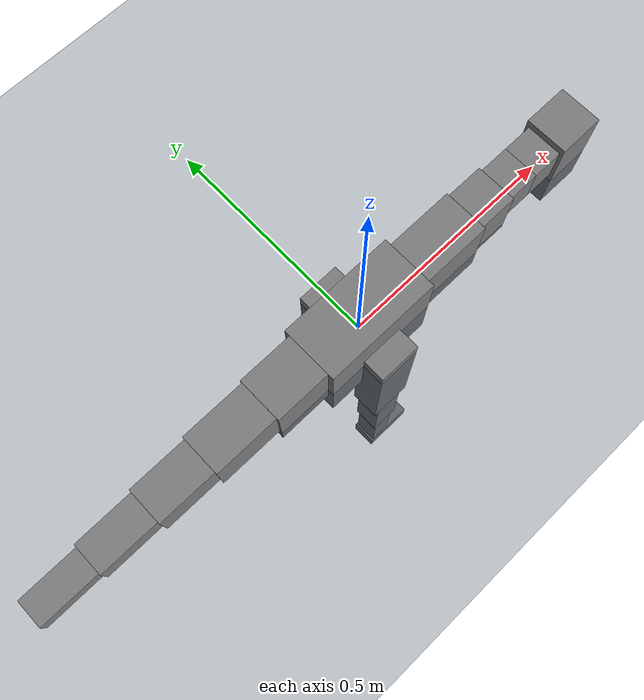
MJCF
<mujoco model="dog">

    <default>
        <joint armature="0.02" stiffness="1" damping="0.2" limited="true"/>
        <geom condim="3" friction="1.0 1  1" margin="0.01"/>
        <motor ctrllimited="true" ctrlrange="-1.0 1.0" forcelimited="true"/>
    </default>

    <compiler inertiafromgeom="true" angle="radian"/>

    <option timestep="0.016" iterations="50" tolerance="1e-10" solver="Newton" jacobian="dense" cone="pyramidal"/>

    <size nconmax="20000" njmax="60000" nstack="5000000"/>
    <visual>
        <map force="0.1" zfar="30"/>
        <rgba haze="0.15 0.25 0.35 1"/>
        <quality shadowsize="2048"/>
        <global offwidth="800" offheight="800"/>
    </visual>

    <asset>
        <texture type="skybox" builtin="gradient" rgb1="0.3 0.5 0.7" rgb2="0 0 0" width="512" height="512"/>
        <texture name="texplane" type="2d" builtin="checker" rgb1=".2 .3 .4" rgb2=".1 0.15 0.2" width="512" height="512"
                 mark="cross" markrgb=".8 .8 .8"/>
        <texture name="texgeom" type="cube" builtin="flat" mark="cross" width="127" height="1278" rgb1="0.8 0.6 0.4"
                 rgb2="0.8 0.6 0.4" markrgb="1 1 1" random="0.01"/>

        <material name="matplane" reflectance="0.3" texture="texplane" texrepeat="1 1" texuniform="true"/>
        <material name="matgeom" texture="texgeom" texuniform="true" rgba="0.8 0.6 .4 1"/>
    </asset>

    <worldbody>
        <geom name="floor" pos="0 0 0" size="0 0 .25" type="plane" material="matplane" condim="3"/>

        <light directional="false" diffuse=".2 .2 .2" specular="0 0 0" pos="0 0 5" dir="0 0 -1" castshadow="false"/>
        <light mode="targetbodycom" target="torso" directional="false" diffuse=".8 .8 .8" specular="0.3 0.3 0.3"
               pos="0 0 4.0" dir="0 0 -1"/>

        <body name="root" pos="0 0 0">
            <freejoint name="root_y"/>
            <geom type="box" size="0.1278 0.063 0.1147" density="2030"/>
            <body name="spine0" pos="0.1058 0 0.0777">
                <joint name="spine0_y" axis="0 1 0" range="-1.57 1.57"/>
                <geom type="box" pos="0.0868 0 -0.05065" size="0.0868 0.05 0.085" density="338"/>
                <body name="spine1" pos="0.1736 0 0">
                    <joint name="spine1_y" axis="0 1 0" range="-1.57 1.57"/>
                    <geom type="box" pos="0.042 0 -0.03" size="0.0415 0.045 0.06285" density="532"/>
                    <body name="spine2" pos="0.083 0 0">
                        <joint name="spine2_y" axis="0 1 0" range="-1.57 1.57"/>
                        <geom type="box" pos="0.0319 0 -0.017" size="0.0394 0.04 0.0417" density="951"/>
                        <body name="spine3" pos="0.0788 0 0">
                            <joint name="spine3_y" axis="0 1 0" range="-1.57 1.57"/>
                            <geom type="box" pos="0.0319 0 -0.017" size="0.0394 0.04 0.0417" density="951"/>
                            <body name="head" pos="0.0688 0 0">
                                <joint name="head_y" axis="0 1 0" range="-1.57 1.57"/>
                                <geom type="box" pos="0.041 0 -0.063" size="0.05 0.0475 0.1043" density="504"/>
                            </body>
                        </body>
                    </body>
                </body>
            </body>
            <body name="tail0" pos="-0.1198 0 0.0777">
                <joint name="tail0_y" axis="0 1 0" range="1 0"/>
                <geom type="box" pos="-0.048 0 -0.04125" size="0.0795 0.05 0.07765" density="809"/>
                <body name="tail1" pos="-0.1252 0 0">
                    <joint name="tail1_y" axis="0 1 0" range="1 0"/>
                    <geom type="box" pos="-0.0571 0 -0.0168" size="0.0846 0.045 0.0527" density="841"/>
                    <body name="tail2" pos="-0.1252 0 0">
                        <joint name="tail2_y" axis="0 1 0" range="1 0"/>
                        <geom type="box" pos="-0.0571 0 -0.007" size="0.0846 0.04 0.04045" density="456"/>
                        <body name="tail3" pos="-0.1252 0 0">
                            <joint name="tail3_y" axis="0 1 0" range="1 0"/>
                            <geom type="box" pos="-0.0571 0 0.002" size="0.0846 0.035 0.0282" density="449"/>
                            <body name="tail4" pos="-0.1252 0 0">
                                <joint name="tail4_y" axis="0 1 0" range="1 0"/>
                                <geom type="box" pos="-0.0571 0 0.005" size="0.0846 0.03 0.02" density="738"/>
                            </body>
                        </body>
                    </body>
                </body>
            </body>
            <body name="right_hip" pos="0 0.08 0">
                <joint name="right_hip_y" axis="0 1 0" range="-1.57 1.57"/>
                <geom type="box" pos="0 0 -0.126" size="0.0469 0.0325 0.15645" density="1048"/>
                <body name="right_knee" pos="0 0 -0.252">
                    <joint name="right_knee_y" axis="0 1 0" range="-3.14 0"/>
                    <geom type="box" pos="0 0 -0.105" size="0.0325 0.03 0.12705" density="1513"/>
                    <body name="right_ankle" pos="0 0 -0.21">
                        <joint name="right_ankle_y" axis="0 1 0" range="0 3.14"/>
                        <geom type="box" pos="0 0 -0.0938" size="0.025 0.0275 0.1015" density="1791"/>
                        <body name="right_toe" pos="0 0 -0.1876">
                            <joint name="right_toe_y" axis="0 1 0" range="-1.57 1.57"/>
                            <geom type="box" pos="0.03 0 -0.03" size="0.06 0.03 0.025" density="1388"/>
                        </body>
                    </body>
                </body>
            </body>
            <body name="left_hip" pos="0 -0.08 0">
                <joint name="left_hip_y" axis="0 1 0" range="-1.57 1.57"/>
                <geom type="box" pos="0 0 -0.126" size="0.0469 0.0325 0.15645" density="1048"/>
                <body name="left_knee" pos="0 0 -0.252">
                    <joint name="left_knee_y" axis="0 1 0" range="-3.14 0"/>
                    <geom type="box" pos="0 0 -0.105" size="0.0325 0.03 0.12705" density="1513"/>
                    <body name="left_ankle" pos="0 0 -0.21">
                        <joint name="left_ankle_y" axis="0 1 0" range="0 3.14"/>
                        <geom type="box" pos="0 0 -0.0938" size="0.025 0.0275 0.1015" density="1791"/>
                        <body name="left_toe" pos="0 0 -0.1876">
                            <joint name="left_toe_y" axis="0 1 0" range="-1.57 1.57"/>
                            <geom type="box" pos="0.03 0 -0.03" size="0.06 0.03 0.025" density="1388"/>
                        </body>
                    </body>
                </body>
            </body>
        </body>
    </worldbody>

    <actuator>
        <motor joint="spine1_y" forcerange="0 300" gear="50"/>
        <motor joint="spine2_y" forcerange="0 300" gear="50"/>
        <motor joint="spine3_y" forcerange="0 300" gear="50"/>
        <motor joint="spine4_y" forcerange="0 300" gear="50"/>
        <motor joint="torso_y" forcerange="0 300" gear="50"/>
        <motor joint="neck1_y" forcerange="0 200" gear="50"/>
        <motor joint="neck2_y" forcerange="0 200" gear="50"/>
        <motor joint="head_y" forcerange="0 200" gear="50"/>
        <motor joint="front_shoulder_y" forcerange="0 300" gear="50"/>
        <motor joint="front_elbow_y" forcerange="0 300" gear="50"/>
        <motor joint="front_wrist_y" forcerange="0 200" gear="50"/>
        <motor joint="front_finger_y" forcerange="0 100" gear="50"/>
        <motor joint="back_hip_y" forcerange="0 300" gear="50"/>
        <motor joint="back_knee_y" forcerange="0 300" gear="50"/>
        <motor joint="back_angle_y" forcerange="0 200" gear="50"/>
        <motor joint="back_toe_y" forcerange="0 100" gear="50"/>
        <motor joint="tail1_y" forcerange="0 100" gear="50"/>
        <motor joint="tail2_y" forcerange="0 100" gear="50"/>
        <motor joint="tail3_y" forcerange="0 100" gear="50"/>
        <motor joint="tail4_y" forcerange="0 100" gear="50"/>
    </actuator>
</mujoco>
